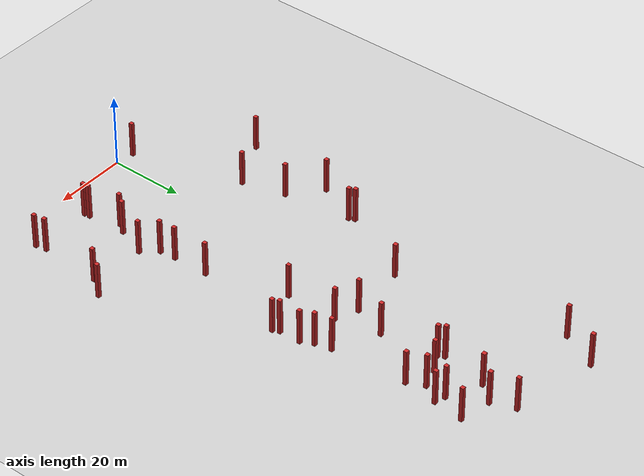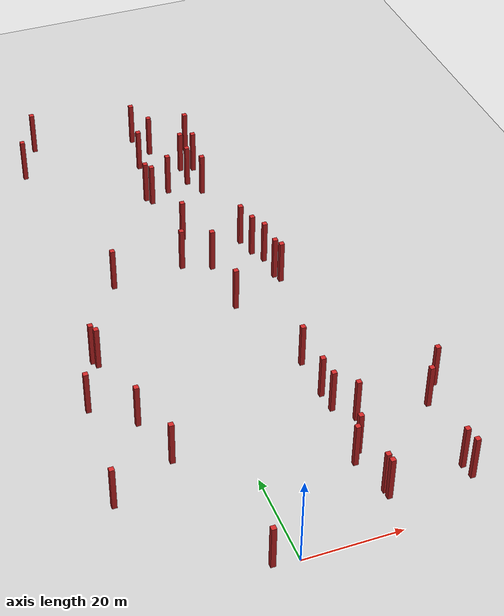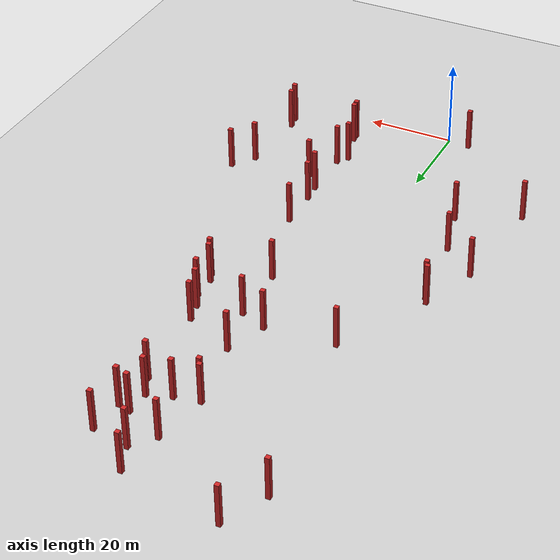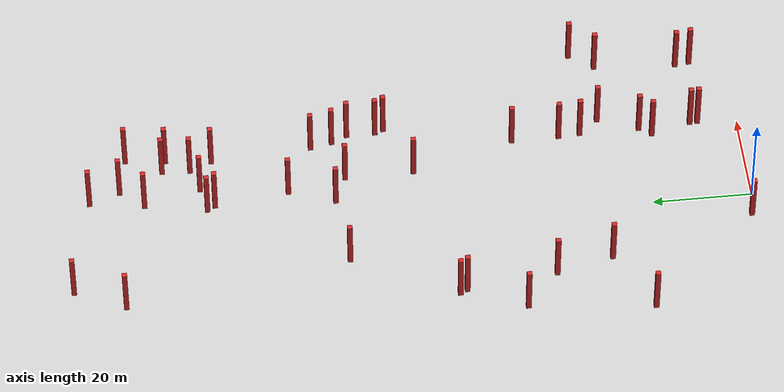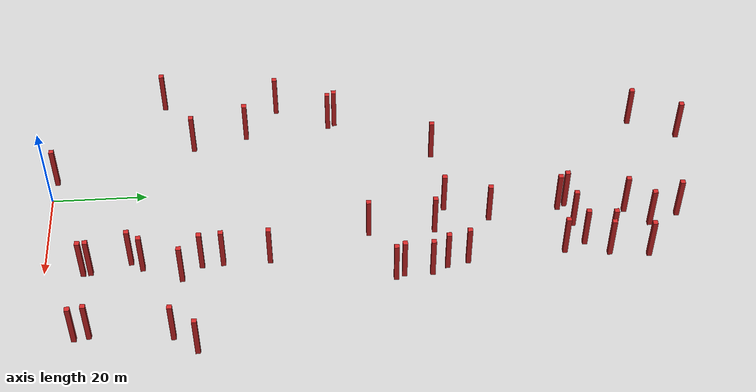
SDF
<sdf version="1.7">
 <world name="default">
  <model name="ground_plane">
   <static>1</static>
   <link name="link">
    <collision name="collision">
     <geometry><plane><normal>0 0 1</normal><size>100 100</size></plane></geometry>
     <surface><friction><ode><mu>100</mu><mu2>50</mu2></ode></friction></surface>
    </collision>
    <visual name="visual">
     <cast_shadows>0</cast_shadows>
     <geometry><plane><normal>0 0 1</normal><size>100 100</size></plane></geometry>
     <material>
      <script><uri>file://media/materials/scripts/gazebo.material</uri><name>Gazebo/Grey</name></script>
     </material>
    </visual>
   </link>
  </model>
  <model name="tall_box_clone_3">
   <pose>-11.5249 136.631 0.00167 0 -0 0</pose>
   <frame name="tall_rectangle::__model__" attached_to="tall_rectangle::link">
    <pose relative_to="__model__">0 0 0 0 -0 0</pose>
   </frame>
   <static>1</static>
   <link name="tall_rectangle::link">
    <collision name="collision">
     <geometry><box><size>1 1 10</size></box></geometry>
     <pose>0 0 5 0 -0 0</pose>
    </collision>
    <visual name="visual">
     <geometry><box><size>1 1 10</size></box></geometry>
     <pose>0 0 5 0 -0 0</pose>
     <material>
      <script><uri>file://media/materials/scripts/gazebo.material</uri><name>Gazebo/Red</name></script>
     </material>
    </visual>
    <pose relative_to="tall_rectangle::__model__">0 0 0 0 -0 0</pose>
   </link>
  </model>
  <model name="tall_box_clone_4">
   <pose>-5.06957 0.77507 0.000476 0 -0 0</pose>
   <frame name="tall_rectangle::__model__" attached_to="tall_rectangle::link">
    <pose relative_to="__model__">0 0 0 0 -0 0</pose>
   </frame>
   <static>1</static>
   <link name="tall_rectangle::link">
    <collision name="collision">
     <geometry><box><size>1 1 10</size></box></geometry>
     <pose>0 0 5 0 -0 0</pose>
    </collision>
    <visual name="visual">
     <geometry><box><size>1 1 10</size></box></geometry>
     <pose>0 0 5 0 -0 0</pose>
     <material>
      <script><uri>file://media/materials/scripts/gazebo.material</uri><name>Gazebo/Red</name></script>
     </material>
    </visual>
    <pose relative_to="tall_rectangle::__model__">0 0 0 0 -0 0</pose>
   </link>
  </model>
  <model name="tall_box_clone_9">
   <pose>-19.6136 61.047 -0.000116 0 -0 0</pose>
   <frame name="tall_rectangle::__model__" attached_to="tall_rectangle::link">
    <pose relative_to="__model__">0 0 0 0 -0 0</pose>
   </frame>
   <static>1</static>
   <link name="tall_rectangle::link">
    <collision name="collision">
     <geometry><box><size>1 1 10</size></box></geometry>
     <pose>0 0 5 0 -0 0</pose>
    </collision>
    <visual name="visual">
     <geometry><box><size>1 1 10</size></box></geometry>
     <pose>0 0 5 0 -0 0</pose>
     <material>
      <script><uri>file://media/materials/scripts/gazebo.material</uri><name>Gazebo/Red</name></script>
     </material>
    </visual>
    <pose relative_to="tall_rectangle::__model__">0 0 0 0 -0 0</pose>
   </link>
  </model>
  <model name="tall_box_clone_11">
   <pose>-8.71474 81.7809 -0.004431 0 -0 0</pose>
   <frame name="tall_rectangle::__model__" attached_to="tall_rectangle::link">
    <pose relative_to="__model__">0 0 0 0 -0 0</pose>
   </frame>
   <static>1</static>
   <link name="tall_rectangle::link">
    <collision name="collision">
     <geometry><box><size>1 1 10</size></box></geometry>
     <pose>0 0 5 0 -0 0</pose>
    </collision>
    <visual name="visual">
     <geometry><box><size>1 1 10</size></box></geometry>
     <pose>0 0 5 0 -0 0</pose>
     <material>
      <script><uri>file://media/materials/scripts/gazebo.material</uri><name>Gazebo/Red</name></script>
     </material>
    </visual>
    <pose relative_to="tall_rectangle::__model__">0 0 0 0 -0 0</pose>
   </link>
  </model>
  <model name="tall_box_clone_12">
   <pose>-16.4555 41.4288 -0.000575 0 -0 0</pose>
   <frame name="tall_rectangle::__model__" attached_to="tall_rectangle::link">
    <pose relative_to="__model__">0 0 0 0 -0 0</pose>
   </frame>
   <static>1</static>
   <link name="tall_rectangle::link">
    <collision name="collision">
     <geometry><box><size>1 1 10</size></box></geometry>
     <pose>0 0 5 0 -0 0</pose>
    </collision>
    <visual name="visual">
     <geometry><box><size>1 1 10</size></box></geometry>
     <pose>0 0 5 0 -0 0</pose>
     <material>
      <script><uri>file://media/materials/scripts/gazebo.material</uri><name>Gazebo/Red</name></script>
     </material>
    </visual>
    <pose relative_to="tall_rectangle::__model__">0 0 0 0 -0 0</pose>
   </link>
  </model>
  <model name="tall_box_clone_13">
   <pose>-16.3469 126.609 0.003519 0 -0 0</pose>
   <frame name="tall_rectangle::__model__" attached_to="tall_rectangle::link">
    <pose relative_to="__model__">0 0 0 0 -0 0</pose>
   </frame>
   <static>1</static>
   <link name="tall_rectangle::link">
    <collision name="collision">
     <geometry><box><size>1 1 10</size></box></geometry>
     <pose>0 0 5 0 -0 0</pose>
    </collision>
    <visual name="visual">
     <geometry><box><size>1 1 10</size></box></geometry>
     <pose>0 0 5 0 -0 0</pose>
     <material>
      <script><uri>file://media/materials/scripts/gazebo.material</uri><name>Gazebo/Red</name></script>
     </material>
    </visual>
    <pose relative_to="tall_rectangle::__model__">0 0 0 0 -0 0</pose>
   </link>
  </model>
  <model name="tall_box_clone_15">
   <pose>-13.4669 29.9735 -0.00105 0 -0 0</pose>
   <frame name="tall_rectangle::__model__" attached_to="tall_rectangle::link">
    <pose relative_to="__model__">0 0 0 0 -0 0</pose>
   </frame>
   <static>1</static>
   <link name="tall_rectangle::link">
    <collision name="collision">
     <geometry><box><size>1 1 10</size></box></geometry>
     <pose>0 0 5 0 -0 0</pose>
    </collision>
    <visual name="visual">
     <geometry><box><size>1 1 10</size></box></geometry>
     <pose>0 0 5 0 -0 0</pose>
     <material>
      <script><uri>file://media/materials/scripts/gazebo.material</uri><name>Gazebo/Red</name></script>
     </material>
    </visual>
    <pose relative_to="tall_rectangle::__model__">0 0 0 0 -0 0</pose>
   </link>
  </model>
  <model name="tall_box_clone_16">
   <pose>-18.883 59.5983 0.000104 0 -0 0</pose>
   <frame name="tall_rectangle::__model__" attached_to="tall_rectangle::link">
    <pose relative_to="__model__">0 0 0 0 -0 0</pose>
   </frame>
   <static>1</static>
   <link name="tall_rectangle::link">
    <collision name="collision">
     <geometry><box><size>1 1 10</size></box></geometry>
     <pose>0 0 5 0 -0 0</pose>
    </collision>
    <visual name="visual">
     <geometry><box><size>1 1 10</size></box></geometry>
     <pose>0 0 5 0 -0 0</pose>
     <material>
      <script><uri>file://media/materials/scripts/gazebo.material</uri><name>Gazebo/Red</name></script>
     </material>
    </visual>
    <pose relative_to="tall_rectangle::__model__">0 0 0 0 -0 0</pose>
   </link>
  </model>
  <model name="tall_box_clone_17">
   <pose>-24.3543 48.1485 -0.003086 0 -0 0</pose>
   <frame name="tall_rectangle::__model__" attached_to="tall_rectangle::link">
    <pose relative_to="__model__">0 0 0 0 -0 0</pose>
   </frame>
   <static>1</static>
   <link name="tall_rectangle::link">
    <collision name="collision">
     <geometry><box><size>1 1 10</size></box></geometry>
     <pose>0 0 5 0 -0 0</pose>
    </collision>
    <visual name="visual">
     <geometry><box><size>1 1 10</size></box></geometry>
     <pose>0 0 5 0 -0 0</pose>
     <material>
      <script><uri>file://media/materials/scripts/gazebo.material</uri><name>Gazebo/Red</name></script>
     </material>
    </visual>
    <pose relative_to="tall_rectangle::__model__">0 0 0 0 -0 0</pose>
   </link>
  </model>
  <model name="tall_box_clone_19">
   <pose>-26.9021 23.1935 0.004637 0 -0 0</pose>
   <frame name="tall_rectangle::__model__" attached_to="tall_rectangle::link">
    <pose relative_to="__model__">0 0 0 0 -0 0</pose>
   </frame>
   <static>1</static>
   <link name="tall_rectangle::link">
    <collision name="collision">
     <geometry><box><size>1 1 10</size></box></geometry>
     <pose>0 0 5 0 -0 0</pose>
    </collision>
    <visual name="visual">
     <geometry><box><size>1 1 10</size></box></geometry>
     <pose>0 0 5 0 -0 0</pose>
     <material>
      <script><uri>file://media/materials/scripts/gazebo.material</uri><name>Gazebo/Red</name></script>
     </material>
    </visual>
    <pose relative_to="tall_rectangle::__model__">0 0 0 0 -0 0</pose>
   </link>
  </model>
  <model name="tall_box_right2_clone_0">
   <pose>18.3039 17.6851 -0.001221 0 -0 0</pose>
   <frame name="tall_rectangle::__model__" attached_to="tall_rectangle::link">
    <pose relative_to="__model__">0 0 0 0 -0 0</pose>
   </frame>
   <static>1</static>
   <link name="tall_rectangle::link">
    <collision name="collision">
     <geometry><box><size>1 1 10</size></box></geometry>
     <pose>0 0 5 0 -0 0</pose>
    </collision>
    <visual name="visual">
     <geometry><box><size>1 1 10</size></box></geometry>
     <pose>0 0 5 0 -0 0</pose>
     <material>
      <script><uri>file://media/materials/scripts/gazebo.material</uri><name>Gazebo/Red</name></script>
     </material>
    </visual>
    <pose relative_to="tall_rectangle::__model__">0 0 0 0 -0 0</pose>
   </link>
  </model>
  <model name="tall_box_right2_clone_1">
   <pose>20.0473 20.131 -0.001119 0 -0 0</pose>
   <frame name="tall_rectangle::__model__" attached_to="tall_rectangle::link">
    <pose relative_to="__model__">0 0 0 0 -0 0</pose>
   </frame>
   <static>1</static>
   <link name="tall_rectangle::link">
    <collision name="collision">
     <geometry><box><size>1 1 10</size></box></geometry>
     <pose>0 0 5 0 -0 0</pose>
    </collision>
    <visual name="visual">
     <geometry><box><size>1 1 10</size></box></geometry>
     <pose>0 0 5 0 -0 0</pose>
     <material>
      <script><uri>file://media/materials/scripts/gazebo.material</uri><name>Gazebo/Red</name></script>
     </material>
    </visual>
    <pose relative_to="tall_rectangle::__model__">0 0 0 0 -0 0</pose>
   </link>
  </model>
  <model name="tall_box_right2_clone_2">
   <pose>19.9458 32.2552 -0.0035 0 -0 0</pose>
   <frame name="tall_rectangle::__model__" attached_to="tall_rectangle::link">
    <pose relative_to="__model__">0 0 0 0 -0 0</pose>
   </frame>
   <static>1</static>
   <link name="tall_rectangle::link">
    <collision name="collision">
     <geometry><box><size>1 1 10</size></box></geometry>
     <pose>0 0 5 0 -0 0</pose>
    </collision>
    <visual name="visual">
     <geometry><box><size>1 1 10</size></box></geometry>
     <pose>0 0 5 0 -0 0</pose>
     <material>
      <script><uri>file://media/materials/scripts/gazebo.material</uri><name>Gazebo/Red</name></script>
     </material>
    </visual>
    <pose relative_to="tall_rectangle::__model__">0 0 0 0 -0 0</pose>
   </link>
  </model>
  <model name="tall_box_right2_clone_3">
   <pose>23.2973 28.2714 0.000893 0 -0 0</pose>
   <frame name="tall_rectangle::__model__" attached_to="tall_rectangle::link">
    <pose relative_to="__model__">0 0 0 0 -0 0</pose>
   </frame>
   <static>1</static>
   <link name="tall_rectangle::link">
    <collision name="collision">
     <geometry><box><size>1 1 10</size></box></geometry>
     <pose>0 0 5 0 -0 0</pose>
    </collision>
    <visual name="visual">
     <geometry><box><size>1 1 10</size></box></geometry>
     <pose>0 0 5 0 -0 0</pose>
     <material>
      <script><uri>file://media/materials/scripts/gazebo.material</uri><name>Gazebo/Red</name></script>
     </material>
    </visual>
    <pose relative_to="tall_rectangle::__model__">0 0 0 0 -0 0</pose>
   </link>
  </model>
  <model name="tall_box_right2_clone_6">
   <pose>20.7207 8.01208 -0.003393 0 -0 0</pose>
   <frame name="tall_rectangle::__model__" attached_to="tall_rectangle::link">
    <pose relative_to="__model__">0 0 0 0 -0 0</pose>
   </frame>
   <static>1</static>
   <link name="tall_rectangle::link">
    <collision name="collision">
     <geometry><box><size>1 1 10</size></box></geometry>
     <pose>0 0 5 0 -0 0</pose>
    </collision>
    <visual name="visual">
     <geometry><box><size>1 1 10</size></box></geometry>
     <pose>0 0 5 0 -0 0</pose>
     <material>
      <script><uri>file://media/materials/scripts/gazebo.material</uri><name>Gazebo/Red</name></script>
     </material>
    </visual>
    <pose relative_to="tall_rectangle::__model__">0 0 0 0 -0 0</pose>
   </link>
  </model>
  <model name="tall_box_right2_clone_7">
   <pose>37.2819 7.29886 0.000748 0 -0 0</pose>
   <frame name="tall_rectangle::__model__" attached_to="tall_rectangle::link">
    <pose relative_to="__model__">0 0 0 0 -0 0</pose>
   </frame>
   <static>1</static>
   <link name="tall_rectangle::link">
    <collision name="collision">
     <geometry><box><size>1 1 10</size></box></geometry>
     <pose>0 0 5 0 -0 0</pose>
    </collision>
    <visual name="visual">
     <geometry><box><size>1 1 10</size></box></geometry>
     <pose>0 0 5 0 -0 0</pose>
     <material>
      <script><uri>file://media/materials/scripts/gazebo.material</uri><name>Gazebo/Red</name></script>
     </material>
    </visual>
    <pose relative_to="tall_rectangle::__model__">0 0 0 0 -0 0</pose>
   </link>
  </model>
  <model name="tall_box_right2_clone_10">
   <pose>20.5872 9.55193 -0.004564 0 -0 0</pose>
   <frame name="tall_rectangle::__model__" attached_to="tall_rectangle::link">
    <pose relative_to="__model__">0 0 0 0 -0 0</pose>
   </frame>
   <static>1</static>
   <link name="tall_rectangle::link">
    <collision name="collision">
     <geometry><box><size>1 1 10</size></box></geometry>
     <pose>0 0 5 0 -0 0</pose>
    </collision>
    <visual name="visual">
     <geometry><box><size>1 1 10</size></box></geometry>
     <pose>0 0 5 0 -0 0</pose>
     <material>
      <script><uri>file://media/materials/scripts/gazebo.material</uri><name>Gazebo/Red</name></script>
     </material>
    </visual>
    <pose relative_to="tall_rectangle::__model__">0 0 0 0 -0 0</pose>
   </link>
  </model>
  <model name="tall_box_right2_clone_11">
   <pose>19.5851 36.6332 0.002603 0 -0 0</pose>
   <frame name="tall_rectangle::__model__" attached_to="tall_rectangle::link">
    <pose relative_to="__model__">0 0 0 0 -0 0</pose>
   </frame>
   <static>1</static>
   <link name="tall_rectangle::link">
    <collision name="collision">
     <geometry><box><size>1 1 10</size></box></geometry>
     <pose>0 0 5 0 -0 0</pose>
    </collision>
    <visual name="visual">
     <geometry><box><size>1 1 10</size></box></geometry>
     <pose>0 0 5 0 -0 0</pose>
     <material>
      <script><uri>file://media/materials/scripts/gazebo.material</uri><name>Gazebo/Red</name></script>
     </material>
    </visual>
    <pose relative_to="tall_rectangle::__model__">0 0 0 0 -0 0</pose>
   </link>
  </model>
  <model name="tall_box_right2_clone_13">
   <pose>37.9353 26.9552 0.002488 0 -0 0</pose>
   <frame name="tall_rectangle::__model__" attached_to="tall_rectangle::link">
    <pose relative_to="__model__">0 0 0 0 -0 0</pose>
   </frame>
   <static>1</static>
   <link name="tall_rectangle::link">
    <collision name="collision">
     <geometry><box><size>1 1 10</size></box></geometry>
     <pose>0 0 5 0 -0 0</pose>
    </collision>
    <visual name="visual">
     <geometry><box><size>1 1 10</size></box></geometry>
     <pose>0 0 5 0 -0 0</pose>
     <material>
      <script><uri>file://media/materials/scripts/gazebo.material</uri><name>Gazebo/Red</name></script>
     </material>
    </visual>
    <pose relative_to="tall_rectangle::__model__">0 0 0 0 -0 0</pose>
   </link>
  </model>
  <model name="tall_box_right2_clone_14">
   <pose>36.803 10.2335 -0.003294 0 -0 0</pose>
   <frame name="tall_rectangle::__model__" attached_to="tall_rectangle::link">
    <pose relative_to="__model__">0 0 0 0 -0 0</pose>
   </frame>
   <static>1</static>
   <link name="tall_rectangle::link">
    <collision name="collision">
     <geometry><box><size>1 1 10</size></box></geometry>
     <pose>0 0 5 0 -0 0</pose>
    </collision>
    <visual name="visual">
     <geometry><box><size>1 1 10</size></box></geometry>
     <pose>0 0 5 0 -0 0</pose>
     <material>
      <script><uri>file://media/materials/scripts/gazebo.material</uri><name>Gazebo/Red</name></script>
     </material>
    </visual>
    <pose relative_to="tall_rectangle::__model__">0 0 0 0 -0 0</pose>
   </link>
  </model>
  <model name="tall_box_right2_clone_18">
   <pose>41.5956 31.7861 0.003687 0 -0 0</pose>
   <frame name="tall_rectangle::__model__" attached_to="tall_rectangle::link">
    <pose relative_to="__model__">0 0 0 0 -0 0</pose>
   </frame>
   <static>1</static>
   <link name="tall_rectangle::link">
    <collision name="collision">
     <geometry><box><size>1 1 10</size></box></geometry>
     <pose>0 0 5 0 -0 0</pose>
    </collision>
    <visual name="visual">
     <geometry><box><size>1 1 10</size></box></geometry>
     <pose>0 0 5 0 -0 0</pose>
     <material>
      <script><uri>file://media/materials/scripts/gazebo.material</uri><name>Gazebo/Red</name></script>
     </material>
    </visual>
    <pose relative_to="tall_rectangle::__model__">0 0 0 0 -0 0</pose>
   </link>
  </model>
  <model name="tall_box_right2_clone_19">
   <pose>19.4496 46.2263 -0.004206 0 -0 0</pose>
   <frame name="tall_rectangle::__model__" attached_to="tall_rectangle::link">
    <pose relative_to="__model__">0 0 0 0 -0 0</pose>
   </frame>
   <static>1</static>
   <link name="tall_rectangle::link">
    <collision name="collision">
     <geometry><box><size>1 1 10</size></box></geometry>
     <pose>0 0 5 0 -0 0</pose>
    </collision>
    <visual name="visual">
     <geometry><box><size>1 1 10</size></box></geometry>
     <pose>0 0 5 0 -0 0</pose>
     <material>
      <script><uri>file://media/materials/scripts/gazebo.material</uri><name>Gazebo/Red</name></script>
     </material>
    </visual>
    <pose relative_to="tall_rectangle::__model__">0 0 0 0 -0 0</pose>
   </link>
  </model>
  <model name="tall_box_right3_clone_0">
   <pose>22.8641 82.5735 0.004255 0 -0 0</pose>
   <frame name="tall_rectangle::__model__" attached_to="tall_rectangle::link">
    <pose relative_to="__model__">0 0 0 0 -0 0</pose>
   </frame>
   <static>1</static>
   <link name="tall_rectangle::link">
    <collision name="collision">
     <geometry><box><size>1 1 10</size></box></geometry>
     <pose>0 0 5 0 -0 0</pose>
    </collision>
    <visual name="visual">
     <geometry><box><size>1 1 10</size></box></geometry>
     <pose>0 0 5 0 -0 0</pose>
     <material>
      <script><uri>file://media/materials/scripts/gazebo.material</uri><name>Gazebo/Red</name></script>
     </material>
    </visual>
    <pose relative_to="tall_rectangle::__model__">0 0 0 0 -0 0</pose>
   </link>
  </model>
  <model name="tall_box_right3_clone_1">
   <pose>24.4592 79.3691 0.002864 0 -0 0</pose>
   <frame name="tall_rectangle::__model__" attached_to="tall_rectangle::link">
    <pose relative_to="__model__">0 0 0 0 -0 0</pose>
   </frame>
   <static>1</static>
   <link name="tall_rectangle::link">
    <collision name="collision">
     <geometry><box><size>1 1 10</size></box></geometry>
     <pose>0 0 5 0 -0 0</pose>
    </collision>
    <visual name="visual">
     <geometry><box><size>1 1 10</size></box></geometry>
     <pose>0 0 5 0 -0 0</pose>
     <material>
      <script><uri>file://media/materials/scripts/gazebo.material</uri><name>Gazebo/Red</name></script>
     </material>
    </visual>
    <pose relative_to="tall_rectangle::__model__">0 0 0 0 -0 0</pose>
   </link>
  </model>
  <model name="tall_box_right3_clone_2">
   <pose>12.9551 109.973 -0.002575 0 -0 0</pose>
   <frame name="tall_rectangle::__model__" attached_to="tall_rectangle::link">
    <pose relative_to="__model__">0 0 0 0 -0 0</pose>
   </frame>
   <static>1</static>
   <link name="tall_rectangle::link">
    <collision name="collision">
     <geometry><box><size>1 1 10</size></box></geometry>
     <pose>0 0 5 0 -0 0</pose>
    </collision>
    <visual name="visual">
     <geometry><box><size>1 1 10</size></box></geometry>
     <pose>0 0 5 0 -0 0</pose>
     <material>
      <script><uri>file://media/materials/scripts/gazebo.material</uri><name>Gazebo/Red</name></script>
     </material>
    </visual>
    <pose relative_to="tall_rectangle::__model__">0 0 0 0 -0 0</pose>
   </link>
  </model>
  <model name="tall_box_right3_clone_3">
   <pose>24.5466 73.5649 -0.003208 0 -0 0</pose>
   <frame name="tall_rectangle::__model__" attached_to="tall_rectangle::link">
    <pose relative_to="__model__">0 0 0 0 -0 0</pose>
   </frame>
   <static>1</static>
   <link name="tall_rectangle::link">
    <collision name="collision">
     <geometry><box><size>1 1 10</size></box></geometry>
     <pose>0 0 5 0 -0 0</pose>
    </collision>
    <visual name="visual">
     <geometry><box><size>1 1 10</size></box></geometry>
     <pose>0 0 5 0 -0 0</pose>
     <material>
      <script><uri>file://media/materials/scripts/gazebo.material</uri><name>Gazebo/Red</name></script>
     </material>
    </visual>
    <pose relative_to="tall_rectangle::__model__">0 0 0 0 -0 0</pose>
   </link>
  </model>
  <model name="tall_box_right3_clone_4">
   <pose>20.2339 107.208 -0.004393 0 -0 0</pose>
   <frame name="tall_rectangle::__model__" attached_to="tall_rectangle::link">
    <pose relative_to="__model__">0 0 0 0 -0 0</pose>
   </frame>
   <static>1</static>
   <link name="tall_rectangle::link">
    <collision name="collision">
     <geometry><box><size>1 1 10</size></box></geometry>
     <pose>0 0 5 0 -0 0</pose>
    </collision>
    <visual name="visual">
     <geometry><box><size>1 1 10</size></box></geometry>
     <pose>0 0 5 0 -0 0</pose>
     <material>
      <script><uri>file://media/materials/scripts/gazebo.material</uri><name>Gazebo/Red</name></script>
     </material>
    </visual>
    <pose relative_to="tall_rectangle::__model__">0 0 0 0 -0 0</pose>
   </link>
  </model>
  <model name="tall_box_right3_clone_5">
   <pose>7.36436 108.896 0.001991 0 -0 0</pose>
   <frame name="tall_rectangle::__model__" attached_to="tall_rectangle::link">
    <pose relative_to="__model__">0 0 0 0 -0 0</pose>
   </frame>
   <static>1</static>
   <link name="tall_rectangle::link">
    <collision name="collision">
     <geometry><box><size>1 1 10</size></box></geometry>
     <pose>0 0 5 0 -0 0</pose>
    </collision>
    <visual name="visual">
     <geometry><box><size>1 1 10</size></box></geometry>
     <pose>0 0 5 0 -0 0</pose>
     <material>
      <script><uri>file://media/materials/scripts/gazebo.material</uri><name>Gazebo/Red</name></script>
     </material>
    </visual>
    <pose relative_to="tall_rectangle::__model__">0 0 0 0 -0 0</pose>
   </link>
  </model>
  <model name="tall_box_right3_clone_6">
   <pose>9.70282 121.348 0.000803 0 -0 0</pose>
   <frame name="tall_rectangle::__model__" attached_to="tall_rectangle::link">
    <pose relative_to="__model__">0 0 0 0 -0 0</pose>
   </frame>
   <static>1</static>
   <link name="tall_rectangle::link">
    <collision name="collision">
     <geometry><box><size>1 1 10</size></box></geometry>
     <pose>0 0 5 0 -0 0</pose>
    </collision>
    <visual name="visual">
     <geometry><box><size>1 1 10</size></box></geometry>
     <pose>0 0 5 0 -0 0</pose>
     <material>
      <script><uri>file://media/materials/scripts/gazebo.material</uri><name>Gazebo/Red</name></script>
     </material>
    </visual>
    <pose relative_to="tall_rectangle::__model__">0 0 0 0 -0 0</pose>
   </link>
  </model>
  <model name="tall_box_right3_clone_7">
   <pose>22.1244 124.489 -0.003605 0 -0 0</pose>
   <frame name="tall_rectangle::__model__" attached_to="tall_rectangle::link">
    <pose relative_to="__model__">0 0 0 0 -0 0</pose>
   </frame>
   <static>1</static>
   <link name="tall_rectangle::link">
    <collision name="collision">
     <geometry><box><size>1 1 10</size></box></geometry>
     <pose>0 0 5 0 -0 0</pose>
    </collision>
    <visual name="visual">
     <geometry><box><size>1 1 10</size></box></geometry>
     <pose>0 0 5 0 -0 0</pose>
     <material>
      <script><uri>file://media/materials/scripts/gazebo.material</uri><name>Gazebo/Red</name></script>
     </material>
    </visual>
    <pose relative_to="tall_rectangle::__model__">0 0 0 0 -0 0</pose>
   </link>
  </model>
  <model name="tall_box_right3_clone_8">
   <pose>18.1808 111.641 -0.00422 0 -0 0</pose>
   <frame name="tall_rectangle::__model__" attached_to="tall_rectangle::link">
    <pose relative_to="__model__">0 0 0 0 -0 0</pose>
   </frame>
   <static>1</static>
   <link name="tall_rectangle::link">
    <collision name="collision">
     <geometry><box><size>1 1 10</size></box></geometry>
     <pose>0 0 5 0 -0 0</pose>
    </collision>
    <visual name="visual">
     <geometry><box><size>1 1 10</size></box></geometry>
     <pose>0 0 5 0 -0 0</pose>
     <material>
      <script><uri>file://media/materials/scripts/gazebo.material</uri><name>Gazebo/Red</name></script>
     </material>
    </visual>
    <pose relative_to="tall_rectangle::__model__">0 0 0 0 -0 0</pose>
   </link>
  </model>
  <model name="tall_box_right3_clone_9">
   <pose>10.4076 92.4159 0.001516 0 -0 0</pose>
   <frame name="tall_rectangle::__model__" attached_to="tall_rectangle::link">
    <pose relative_to="__model__">0 0 0 0 -0 0</pose>
   </frame>
   <static>1</static>
   <link name="tall_rectangle::link">
    <collision name="collision">
     <geometry><box><size>1 1 10</size></box></geometry>
     <pose>0 0 5 0 -0 0</pose>
    </collision>
    <visual name="visual">
     <geometry><box><size>1 1 10</size></box></geometry>
     <pose>0 0 5 0 -0 0</pose>
     <material>
      <script><uri>file://media/materials/scripts/gazebo.material</uri><name>Gazebo/Red</name></script>
     </material>
    </visual>
    <pose relative_to="tall_rectangle::__model__">0 0 0 0 -0 0</pose>
   </link>
  </model>
  <model name="tall_box_right3_clone_10">
   <pose>7.0213 83.1609 -0.00039 0 -0 0</pose>
   <frame name="tall_rectangle::__model__" attached_to="tall_rectangle::link">
    <pose relative_to="__model__">0 0 0 0 -0 0</pose>
   </frame>
   <static>1</static>
   <link name="tall_rectangle::link">
    <collision name="collision">
     <geometry><box><size>1 1 10</size></box></geometry>
     <pose>0 0 5 0 -0 0</pose>
    </collision>
    <visual name="visual">
     <geometry><box><size>1 1 10</size></box></geometry>
     <pose>0 0 5 0 -0 0</pose>
     <material>
      <script><uri>file://media/materials/scripts/gazebo.material</uri><name>Gazebo/Red</name></script>
     </material>
    </visual>
    <pose relative_to="tall_rectangle::__model__">0 0 0 0 -0 0</pose>
   </link>
  </model>
  <model name="tall_box_right3_clone_11">
   <pose>21.8562 86.9194 -0.000561 0 -0 0</pose>
   <frame name="tall_rectangle::__model__" attached_to="tall_rectangle::link">
    <pose relative_to="__model__">0 0 0 0 -0 0</pose>
   </frame>
   <static>1</static>
   <link name="tall_rectangle::link">
    <collision name="collision">
     <geometry><box><size>1 1 10</size></box></geometry>
     <pose>0 0 5 0 -0 0</pose>
    </collision>
    <visual name="visual">
     <geometry><box><size>1 1 10</size></box></geometry>
     <pose>0 0 5 0 -0 0</pose>
     <material>
      <script><uri>file://media/materials/scripts/gazebo.material</uri><name>Gazebo/Red</name></script>
     </material>
    </visual>
    <pose relative_to="tall_rectangle::__model__">0 0 0 0 -0 0</pose>
   </link>
  </model>
  <model name="tall_box_right3_clone_12">
   <pose>13.2213 66.9191 1.9e-05 0 -0 0</pose>
   <frame name="tall_rectangle::__model__" attached_to="tall_rectangle::link">
    <pose relative_to="__model__">0 0 0 0 -0 0</pose>
   </frame>
   <static>1</static>
   <link name="tall_rectangle::link">
    <collision name="collision">
     <geometry><box><size>1 1 10</size></box></geometry>
     <pose>0 0 5 0 -0 0</pose>
    </collision>
    <visual name="visual">
     <geometry><box><size>1 1 10</size></box></geometry>
     <pose>0 0 5 0 -0 0</pose>
     <material>
      <script><uri>file://media/materials/scripts/gazebo.material</uri><name>Gazebo/Red</name></script>
     </material>
    </visual>
    <pose relative_to="tall_rectangle::__model__">0 0 0 0 -0 0</pose>
   </link>
  </model>
  <model name="tall_box_right3_clone_13">
   <pose>8.30072 107.305 -0.000399 0 -0 0</pose>
   <frame name="tall_rectangle::__model__" attached_to="tall_rectangle::link">
    <pose relative_to="__model__">0 0 0 0 -0 0</pose>
   </frame>
   <static>1</static>
   <link name="tall_rectangle::link">
    <collision name="collision">
     <geometry><box><size>1 1 10</size></box></geometry>
     <pose>0 0 5 0 -0 0</pose>
    </collision>
    <visual name="visual">
     <geometry><box><size>1 1 10</size></box></geometry>
     <pose>0 0 5 0 -0 0</pose>
     <material>
      <script><uri>file://media/materials/scripts/gazebo.material</uri><name>Gazebo/Red</name></script>
     </material>
    </visual>
    <pose relative_to="tall_rectangle::__model__">0 0 0 0 -0 0</pose>
   </link>
  </model>
  <model name="tall_box_right3_clone_14">
   <pose>13.7437 126.106 0.004586 0 -0 0</pose>
   <frame name="tall_rectangle::__model__" attached_to="tall_rectangle::link">
    <pose relative_to="__model__">0 0 0 0 -0 0</pose>
   </frame>
   <static>1</static>
   <link name="tall_rectangle::link">
    <collision name="collision">
     <geometry><box><size>1 1 10</size></box></geometry>
     <pose>0 0 5 0 -0 0</pose>
    </collision>
    <visual name="visual">
     <geometry><box><size>1 1 10</size></box></geometry>
     <pose>0 0 5 0 -0 0</pose>
     <material>
      <script><uri>file://media/materials/scripts/gazebo.material</uri><name>Gazebo/Red</name></script>
     </material>
    </visual>
    <pose relative_to="tall_rectangle::__model__">0 0 0 0 -0 0</pose>
   </link>
  </model>
  <model name="tall_box_right3_clone_15">
   <pose>21.2889 116.41 -0.003381 0 -0 0</pose>
   <frame name="tall_rectangle::__model__" attached_to="tall_rectangle::link">
    <pose relative_to="__model__">0 0 0 0 -0 0</pose>
   </frame>
   <static>1</static>
   <link name="tall_rectangle::link">
    <collision name="collision">
     <geometry><box><size>1 1 10</size></box></geometry>
     <pose>0 0 5 0 -0 0</pose>
    </collision>
    <visual name="visual">
     <geometry><box><size>1 1 10</size></box></geometry>
     <pose>0 0 5 0 -0 0</pose>
     <material>
      <script><uri>file://media/materials/scripts/gazebo.material</uri><name>Gazebo/Red</name></script>
     </material>
    </visual>
    <pose relative_to="tall_rectangle::__model__">0 0 0 0 -0 0</pose>
   </link>
  </model>
  <model name="tall_box_right3_clone_16">
   <pose>25.305 71.8391 -0.000691 0 -0 0</pose>
   <frame name="tall_rectangle::__model__" attached_to="tall_rectangle::link">
    <pose relative_to="__model__">0 0 0 0 -0 0</pose>
   </frame>
   <static>1</static>
   <link name="tall_rectangle::link">
    <collision name="collision">
     <geometry><box><size>1 1 10</size></box></geometry>
     <pose>0 0 5 0 -0 0</pose>
    </collision>
    <visual name="visual">
     <geometry><box><size>1 1 10</size></box></geometry>
     <pose>0 0 5 0 -0 0</pose>
     <material>
      <script><uri>file://media/materials/scripts/gazebo.material</uri><name>Gazebo/Red</name></script>
     </material>
    </visual>
    <pose relative_to="tall_rectangle::__model__">0 0 0 0 -0 0</pose>
   </link>
  </model>
  <model name="tall_box_right3_clone_17">
   <pose>13.0316 80.7162 0.004708 0 -0 0</pose>
   <frame name="tall_rectangle::__model__" attached_to="tall_rectangle::link">
    <pose relative_to="__model__">0 0 0 0 -0 0</pose>
   </frame>
   <static>1</static>
   <link name="tall_rectangle::link">
    <collision name="collision">
     <geometry><box><size>1 1 10</size></box></geometry>
     <pose>0 0 5 0 -0 0</pose>
    </collision>
    <visual name="visual">
     <geometry><box><size>1 1 10</size></box></geometry>
     <pose>0 0 5 0 -0 0</pose>
     <material>
      <script><uri>file://media/materials/scripts/gazebo.material</uri><name>Gazebo/Red</name></script>
     </material>
    </visual>
    <pose relative_to="tall_rectangle::__model__">0 0 0 0 -0 0</pose>
   </link>
  </model>
  <model name="tall_box_right3_clone_18">
   <pose>11.3955 132.276 -0.00289 0 -0 0</pose>
   <frame name="tall_rectangle::__model__" attached_to="tall_rectangle::link">
    <pose relative_to="__model__">0 0 0 0 -0 0</pose>
   </frame>
   <static>1</static>
   <link name="tall_rectangle::link">
    <collision name="collision">
     <geometry><box><size>1 1 10</size></box></geometry>
     <pose>0 0 5 0 -0 0</pose>
    </collision>
    <visual name="visual">
     <geometry><box><size>1 1 10</size></box></geometry>
     <pose>0 0 5 0 -0 0</pose>
     <material>
      <script><uri>file://media/materials/scripts/gazebo.material</uri><name>Gazebo/Red</name></script>
     </material>
    </visual>
    <pose relative_to="tall_rectangle::__model__">0 0 0 0 -0 0</pose>
   </link>
  </model>
  <model name="tall_box_right3_clone_19">
   <pose>18.4898 117.273 -0.003337 0 -0 0</pose>
   <frame name="tall_rectangle::__model__" attached_to="tall_rectangle::link">
    <pose relative_to="__model__">0 0 0 0 -0 0</pose>
   </frame>
   <static>1</static>
   <link name="tall_rectangle::link">
    <collision name="collision">
     <geometry><box><size>1 1 10</size></box></geometry>
     <pose>0 0 5 0 -0 0</pose>
    </collision>
    <visual name="visual">
     <geometry><box><size>1 1 10</size></box></geometry>
     <pose>0 0 5 0 -0 0</pose>
     <material>
      <script><uri>file://media/materials/scripts/gazebo.material</uri><name>Gazebo/Red</name></script>
     </material>
    </visual>
    <pose relative_to="tall_rectangle::__model__">0 0 0 0 -0 0</pose>
   </link>
  </model>
 </world>
</sdf>
